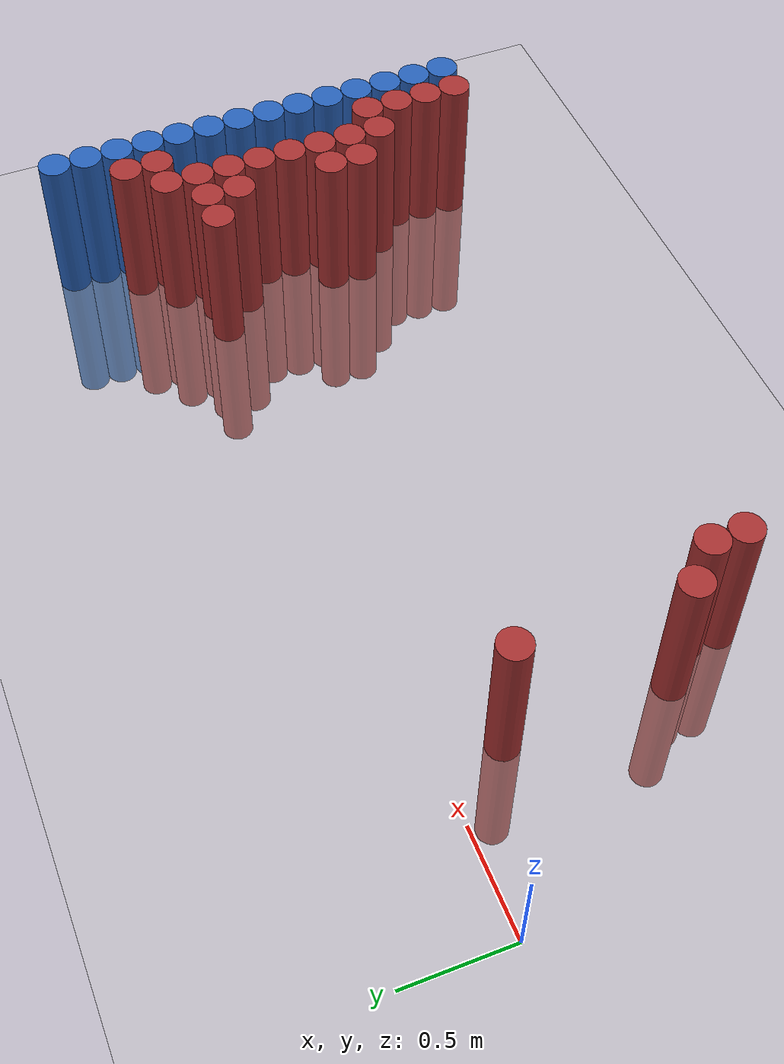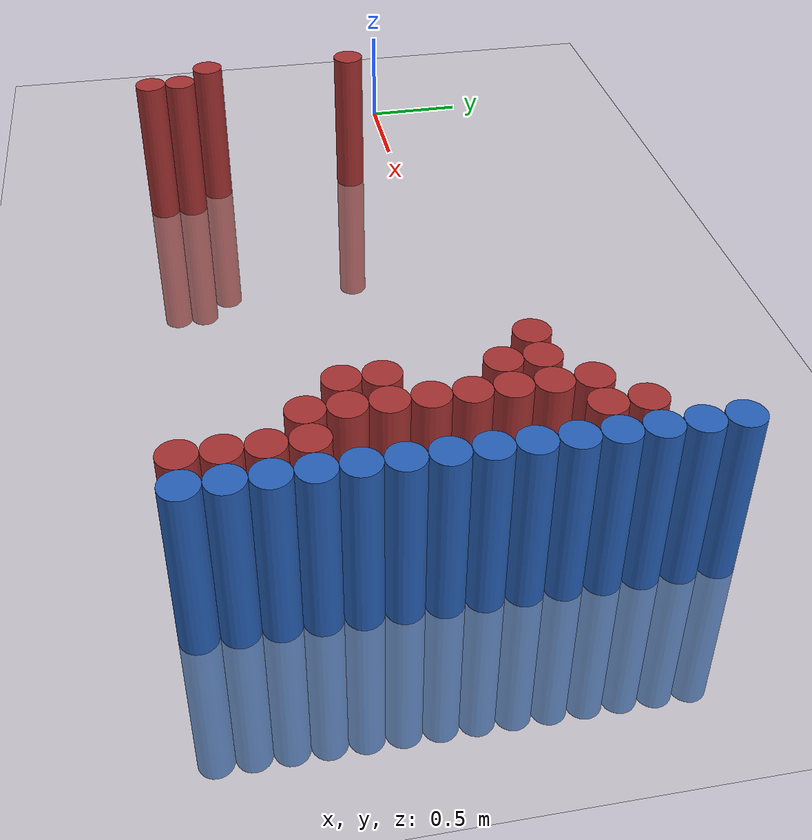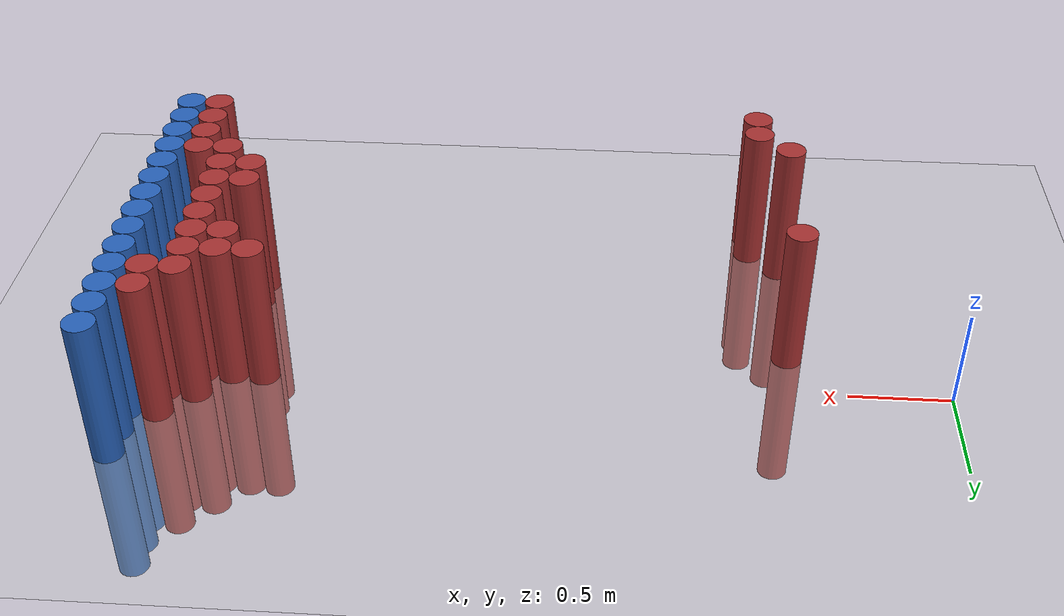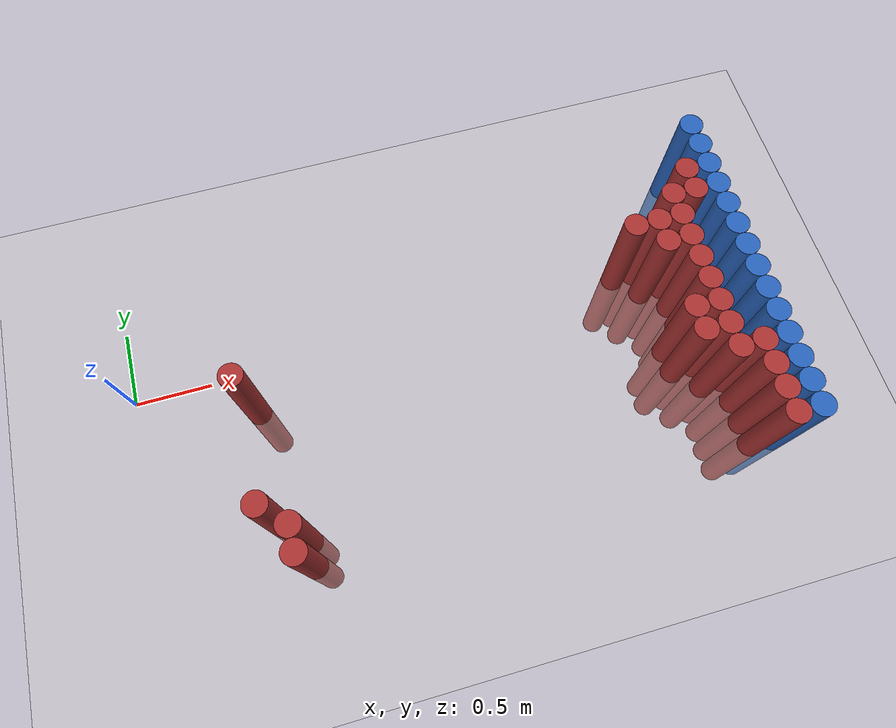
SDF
<sdf version="1.6">
 <world name="default">
  <model name="ground_plane">
   <static>1</static>
   <link name="link">
    <collision name="collision">
     <geometry><plane><normal>0 0 1</normal><size>100 100</size></plane></geometry>
     <surface><friction><ode><mu>100</mu><mu2>50</mu2></ode></friction></surface>
    </collision>
    <visual name="visual">
     <cast_shadows>0</cast_shadows>
     <geometry><plane><normal>0 0 1</normal><size>100 100</size></plane></geometry>
     <material>
      <script><uri>file://media/materials/scripts/gazebo.material</uri><name>Gazebo/Grey</name></script>
     </material>
    </visual>
   </link>
  </model>
  <model name="unit_cylinder_96">
   <static>1</static>
   <pose>3.925000 -1.325000 0.000000 0.000000 0.000000 0.000000</pose>
   <link name="link">
    <inertial>
     <mass>1</mass>
     <inertia><ixx>0.145833</ixx><ixy>0</ixy><ixz>0</ixz><iyy>0.145833</iyy><iyz>0</iyz><izz>0.125</izz></inertia>
    </inertial>
    <collision name="collision">
     <geometry><cylinder><radius>0.075000</radius><length>1.5</length></cylinder></geometry>
    </collision>
    <visual name="visual">
     <geometry><cylinder><radius>0.075000</radius><length>1.5</length></cylinder></geometry>
     <material>
      <ambient>0.152000 0.379000 0.720000 1</ambient>
      <diffuse>0.152000 0.379000 0.720000 1</diffuse>
     </material>
     <material>
      <script><name>Gazebo/Grey</name><uri>file://media/materials/scripts/gazebo.material</uri></script>
     </material>
    </visual>
   </link>
  </model>
  <model name="unit_cylinder_98">
   <static>1</static>
   <pose>3.925000 -1.175000 0.000000 0.000000 0.000000 0.000000</pose>
   <link name="link">
    <inertial>
     <mass>1</mass>
     <inertia><ixx>0.145833</ixx><ixy>0</ixy><ixz>0</ixz><iyy>0.145833</iyy><iyz>0</iyz><izz>0.125</izz></inertia>
    </inertial>
    <collision name="collision">
     <geometry><cylinder><radius>0.075000</radius><length>1.5</length></cylinder></geometry>
    </collision>
    <visual name="visual">
     <geometry><cylinder><radius>0.075000</radius><length>1.5</length></cylinder></geometry>
     <material>
      <ambient>0.152000 0.379000 0.720000 1</ambient>
      <diffuse>0.152000 0.379000 0.720000 1</diffuse>
     </material>
     <material>
      <script><name>Gazebo/Grey</name><uri>file://media/materials/scripts/gazebo.material</uri></script>
     </material>
    </visual>
   </link>
  </model>
  <model name="unit_cylinder_100">
   <static>1</static>
   <pose>3.925000 -1.025000 0.000000 0.000000 0.000000 0.000000</pose>
   <link name="link">
    <inertial>
     <mass>1</mass>
     <inertia><ixx>0.145833</ixx><ixy>0</ixy><ixz>0</ixz><iyy>0.145833</iyy><iyz>0</iyz><izz>0.125</izz></inertia>
    </inertial>
    <collision name="collision">
     <geometry><cylinder><radius>0.075000</radius><length>1.5</length></cylinder></geometry>
    </collision>
    <visual name="visual">
     <geometry><cylinder><radius>0.075000</radius><length>1.5</length></cylinder></geometry>
     <material>
      <ambient>0.152000 0.379000 0.720000 1</ambient>
      <diffuse>0.152000 0.379000 0.720000 1</diffuse>
     </material>
     <material>
      <script><name>Gazebo/Grey</name><uri>file://media/materials/scripts/gazebo.material</uri></script>
     </material>
    </visual>
   </link>
  </model>
  <model name="unit_cylinder_102">
   <static>1</static>
   <pose>3.925000 -0.875000 0.000000 0.000000 0.000000 0.000000</pose>
   <link name="link">
    <inertial>
     <mass>1</mass>
     <inertia><ixx>0.145833</ixx><ixy>0</ixy><ixz>0</ixz><iyy>0.145833</iyy><iyz>0</iyz><izz>0.125</izz></inertia>
    </inertial>
    <collision name="collision">
     <geometry><cylinder><radius>0.075000</radius><length>1.5</length></cylinder></geometry>
    </collision>
    <visual name="visual">
     <geometry><cylinder><radius>0.075000</radius><length>1.5</length></cylinder></geometry>
     <material>
      <ambient>0.152000 0.379000 0.720000 1</ambient>
      <diffuse>0.152000 0.379000 0.720000 1</diffuse>
     </material>
     <material>
      <script><name>Gazebo/Grey</name><uri>file://media/materials/scripts/gazebo.material</uri></script>
     </material>
    </visual>
   </link>
  </model>
  <model name="unit_cylinder_104">
   <static>1</static>
   <pose>3.925000 -0.725000 0.000000 0.000000 0.000000 0.000000</pose>
   <link name="link">
    <inertial>
     <mass>1</mass>
     <inertia><ixx>0.145833</ixx><ixy>0</ixy><ixz>0</ixz><iyy>0.145833</iyy><iyz>0</iyz><izz>0.125</izz></inertia>
    </inertial>
    <collision name="collision">
     <geometry><cylinder><radius>0.075000</radius><length>1.5</length></cylinder></geometry>
    </collision>
    <visual name="visual">
     <geometry><cylinder><radius>0.075000</radius><length>1.5</length></cylinder></geometry>
     <material>
      <ambient>0.152000 0.379000 0.720000 1</ambient>
      <diffuse>0.152000 0.379000 0.720000 1</diffuse>
     </material>
     <material>
      <script><name>Gazebo/Grey</name><uri>file://media/materials/scripts/gazebo.material</uri></script>
     </material>
    </visual>
   </link>
  </model>
  <model name="unit_cylinder_106">
   <static>1</static>
   <pose>3.925000 -0.575000 0.000000 0.000000 0.000000 0.000000</pose>
   <link name="link">
    <inertial>
     <mass>1</mass>
     <inertia><ixx>0.145833</ixx><ixy>0</ixy><ixz>0</ixz><iyy>0.145833</iyy><iyz>0</iyz><izz>0.125</izz></inertia>
    </inertial>
    <collision name="collision">
     <geometry><cylinder><radius>0.075000</radius><length>1.5</length></cylinder></geometry>
    </collision>
    <visual name="visual">
     <geometry><cylinder><radius>0.075000</radius><length>1.5</length></cylinder></geometry>
     <material>
      <ambient>0.152000 0.379000 0.720000 1</ambient>
      <diffuse>0.152000 0.379000 0.720000 1</diffuse>
     </material>
     <material>
      <script><name>Gazebo/Grey</name><uri>file://media/materials/scripts/gazebo.material</uri></script>
     </material>
    </visual>
   </link>
  </model>
  <model name="unit_cylinder_108">
   <static>1</static>
   <pose>3.925000 -0.425000 0.000000 0.000000 0.000000 0.000000</pose>
   <link name="link">
    <inertial>
     <mass>1</mass>
     <inertia><ixx>0.145833</ixx><ixy>0</ixy><ixz>0</ixz><iyy>0.145833</iyy><iyz>0</iyz><izz>0.125</izz></inertia>
    </inertial>
    <collision name="collision">
     <geometry><cylinder><radius>0.075000</radius><length>1.5</length></cylinder></geometry>
    </collision>
    <visual name="visual">
     <geometry><cylinder><radius>0.075000</radius><length>1.5</length></cylinder></geometry>
     <material>
      <ambient>0.152000 0.379000 0.720000 1</ambient>
      <diffuse>0.152000 0.379000 0.720000 1</diffuse>
     </material>
     <material>
      <script><name>Gazebo/Grey</name><uri>file://media/materials/scripts/gazebo.material</uri></script>
     </material>
    </visual>
   </link>
  </model>
  <model name="unit_cylinder_110">
   <static>1</static>
   <pose>3.925000 -0.275000 0.000000 0.000000 0.000000 0.000000</pose>
   <link name="link">
    <inertial>
     <mass>1</mass>
     <inertia><ixx>0.145833</ixx><ixy>0</ixy><ixz>0</ixz><iyy>0.145833</iyy><iyz>0</iyz><izz>0.125</izz></inertia>
    </inertial>
    <collision name="collision">
     <geometry><cylinder><radius>0.075000</radius><length>1.5</length></cylinder></geometry>
    </collision>
    <visual name="visual">
     <geometry><cylinder><radius>0.075000</radius><length>1.5</length></cylinder></geometry>
     <material>
      <ambient>0.152000 0.379000 0.720000 1</ambient>
      <diffuse>0.152000 0.379000 0.720000 1</diffuse>
     </material>
     <material>
      <script><name>Gazebo/Grey</name><uri>file://media/materials/scripts/gazebo.material</uri></script>
     </material>
    </visual>
   </link>
  </model>
  <model name="unit_cylinder_112">
   <static>1</static>
   <pose>3.925000 -0.125000 0.000000 0.000000 0.000000 0.000000</pose>
   <link name="link">
    <inertial>
     <mass>1</mass>
     <inertia><ixx>0.145833</ixx><ixy>0</ixy><ixz>0</ixz><iyy>0.145833</iyy><iyz>0</iyz><izz>0.125</izz></inertia>
    </inertial>
    <collision name="collision">
     <geometry><cylinder><radius>0.075000</radius><length>1.5</length></cylinder></geometry>
    </collision>
    <visual name="visual">
     <geometry><cylinder><radius>0.075000</radius><length>1.5</length></cylinder></geometry>
     <material>
      <ambient>0.152000 0.379000 0.720000 1</ambient>
      <diffuse>0.152000 0.379000 0.720000 1</diffuse>
     </material>
     <material>
      <script><name>Gazebo/Grey</name><uri>file://media/materials/scripts/gazebo.material</uri></script>
     </material>
    </visual>
   </link>
  </model>
  <model name="unit_cylinder_114">
   <static>1</static>
   <pose>3.925000 0.025000 0.000000 0.000000 0.000000 0.000000</pose>
   <link name="link">
    <inertial>
     <mass>1</mass>
     <inertia><ixx>0.145833</ixx><ixy>0</ixy><ixz>0</ixz><iyy>0.145833</iyy><iyz>0</iyz><izz>0.125</izz></inertia>
    </inertial>
    <collision name="collision">
     <geometry><cylinder><radius>0.075000</radius><length>1.5</length></cylinder></geometry>
    </collision>
    <visual name="visual">
     <geometry><cylinder><radius>0.075000</radius><length>1.5</length></cylinder></geometry>
     <material>
      <ambient>0.152000 0.379000 0.720000 1</ambient>
      <diffuse>0.152000 0.379000 0.720000 1</diffuse>
     </material>
     <material>
      <script><name>Gazebo/Grey</name><uri>file://media/materials/scripts/gazebo.material</uri></script>
     </material>
    </visual>
   </link>
  </model>
  <model name="unit_cylinder_116">
   <static>1</static>
   <pose>3.925000 0.175000 0.000000 0.000000 0.000000 0.000000</pose>
   <link name="link">
    <inertial>
     <mass>1</mass>
     <inertia><ixx>0.145833</ixx><ixy>0</ixy><ixz>0</ixz><iyy>0.145833</iyy><iyz>0</iyz><izz>0.125</izz></inertia>
    </inertial>
    <collision name="collision">
     <geometry><cylinder><radius>0.075000</radius><length>1.5</length></cylinder></geometry>
    </collision>
    <visual name="visual">
     <geometry><cylinder><radius>0.075000</radius><length>1.5</length></cylinder></geometry>
     <material>
      <ambient>0.152000 0.379000 0.720000 1</ambient>
      <diffuse>0.152000 0.379000 0.720000 1</diffuse>
     </material>
     <material>
      <script><name>Gazebo/Grey</name><uri>file://media/materials/scripts/gazebo.material</uri></script>
     </material>
    </visual>
   </link>
  </model>
  <model name="unit_cylinder_118">
   <static>1</static>
   <pose>3.925000 0.325000 0.000000 0.000000 0.000000 0.000000</pose>
   <link name="link">
    <inertial>
     <mass>1</mass>
     <inertia><ixx>0.145833</ixx><ixy>0</ixy><ixz>0</ixz><iyy>0.145833</iyy><iyz>0</iyz><izz>0.125</izz></inertia>
    </inertial>
    <collision name="collision">
     <geometry><cylinder><radius>0.075000</radius><length>1.5</length></cylinder></geometry>
    </collision>
    <visual name="visual">
     <geometry><cylinder><radius>0.075000</radius><length>1.5</length></cylinder></geometry>
     <material>
      <ambient>0.152000 0.379000 0.720000 1</ambient>
      <diffuse>0.152000 0.379000 0.720000 1</diffuse>
     </material>
     <material>
      <script><name>Gazebo/Grey</name><uri>file://media/materials/scripts/gazebo.material</uri></script>
     </material>
    </visual>
   </link>
  </model>
  <model name="unit_cylinder_120">
   <static>1</static>
   <pose>3.925000 0.475000 0.000000 0.000000 0.000000 0.000000</pose>
   <link name="link">
    <inertial>
     <mass>1</mass>
     <inertia><ixx>0.145833</ixx><ixy>0</ixy><ixz>0</ixz><iyy>0.145833</iyy><iyz>0</iyz><izz>0.125</izz></inertia>
    </inertial>
    <collision name="collision">
     <geometry><cylinder><radius>0.075000</radius><length>1.5</length></cylinder></geometry>
    </collision>
    <visual name="visual">
     <geometry><cylinder><radius>0.075000</radius><length>1.5</length></cylinder></geometry>
     <material>
      <ambient>0.152000 0.379000 0.720000 1</ambient>
      <diffuse>0.152000 0.379000 0.720000 1</diffuse>
     </material>
     <material>
      <script><name>Gazebo/Grey</name><uri>file://media/materials/scripts/gazebo.material</uri></script>
     </material>
    </visual>
   </link>
  </model>
  <model name="unit_cylinder_122">
   <static>1</static>
   <pose>3.925000 0.625000 0.000000 0.000000 0.000000 0.000000</pose>
   <link name="link">
    <inertial>
     <mass>1</mass>
     <inertia><ixx>0.145833</ixx><ixy>0</ixy><ixz>0</ixz><iyy>0.145833</iyy><iyz>0</iyz><izz>0.125</izz></inertia>
    </inertial>
    <collision name="collision">
     <geometry><cylinder><radius>0.075000</radius><length>1.5</length></cylinder></geometry>
    </collision>
    <visual name="visual">
     <geometry><cylinder><radius>0.075000</radius><length>1.5</length></cylinder></geometry>
     <material>
      <ambient>0.152000 0.379000 0.720000 1</ambient>
      <diffuse>0.152000 0.379000 0.720000 1</diffuse>
     </material>
     <material>
      <script><name>Gazebo/Grey</name><uri>file://media/materials/scripts/gazebo.material</uri></script>
     </material>
    </visual>
   </link>
  </model>
  <model name="unit_cylinder_409">
   <static>1</static>
   <pose>0.775000 -1.025000 0.000000 0.000000 0.000000 0.000000</pose>
   <link name="link">
    <inertial>
     <mass>1</mass>
     <inertia><ixx>0.145833</ixx><ixy>0</ixy><ixz>0</ixz><iyy>0.145833</iyy><iyz>0</iyz><izz>0.125</izz></inertia>
    </inertial>
    <collision name="collision">
     <geometry><cylinder><radius>0.075000</radius><length>1.5</length></cylinder></geometry>
    </collision>
    <visual name="visual">
     <geometry><cylinder><radius>0.075000</radius><length>1.5</length></cylinder></geometry>
     <material>
      <ambient>0.648000 0.192000 0.192000 1</ambient>
      <diffuse>0.648000 0.192000 0.192000 1</diffuse>
     </material>
     <material>
      <script><name>Gazebo/Grey</name><uri>file://media/materials/scripts/gazebo.material</uri></script>
     </material>
    </visual>
   </link>
  </model>
  <model name="unit_cylinder_410">
   <static>1</static>
   <pose>0.775000 -0.275000 0.000000 0.000000 0.000000 0.000000</pose>
   <link name="link">
    <inertial>
     <mass>1</mass>
     <inertia><ixx>0.145833</ixx><ixy>0</ixy><ixz>0</ixz><iyy>0.145833</iyy><iyz>0</iyz><izz>0.125</izz></inertia>
    </inertial>
    <collision name="collision">
     <geometry><cylinder><radius>0.075000</radius><length>1.5</length></cylinder></geometry>
    </collision>
    <visual name="visual">
     <geometry><cylinder><radius>0.075000</radius><length>1.5</length></cylinder></geometry>
     <material>
      <ambient>0.648000 0.192000 0.192000 1</ambient>
      <diffuse>0.648000 0.192000 0.192000 1</diffuse>
     </material>
     <material>
      <script><name>Gazebo/Grey</name><uri>file://media/materials/scripts/gazebo.material</uri></script>
     </material>
    </visual>
   </link>
  </model>
  <model name="unit_cylinder_413">
   <static>1</static>
   <pose>0.925000 -1.325000 0.000000 0.000000 0.000000 0.000000</pose>
   <link name="link">
    <inertial>
     <mass>1</mass>
     <inertia><ixx>0.145833</ixx><ixy>0</ixy><ixz>0</ixz><iyy>0.145833</iyy><iyz>0</iyz><izz>0.125</izz></inertia>
    </inertial>
    <collision name="collision">
     <geometry><cylinder><radius>0.075000</radius><length>1.5</length></cylinder></geometry>
    </collision>
    <visual name="visual">
     <geometry><cylinder><radius>0.075000</radius><length>1.5</length></cylinder></geometry>
     <material>
      <ambient>0.648000 0.192000 0.192000 1</ambient>
      <diffuse>0.648000 0.192000 0.192000 1</diffuse>
     </material>
     <material>
      <script><name>Gazebo/Grey</name><uri>file://media/materials/scripts/gazebo.material</uri></script>
     </material>
    </visual>
   </link>
  </model>
  <model name="unit_cylinder_414">
   <static>1</static>
   <pose>0.925000 -1.175000 0.000000 0.000000 0.000000 0.000000</pose>
   <link name="link">
    <inertial>
     <mass>1</mass>
     <inertia><ixx>0.145833</ixx><ixy>0</ixy><ixz>0</ixz><iyy>0.145833</iyy><iyz>0</iyz><izz>0.125</izz></inertia>
    </inertial>
    <collision name="collision">
     <geometry><cylinder><radius>0.075000</radius><length>1.5</length></cylinder></geometry>
    </collision>
    <visual name="visual">
     <geometry><cylinder><radius>0.075000</radius><length>1.5</length></cylinder></geometry>
     <material>
      <ambient>0.648000 0.192000 0.192000 1</ambient>
      <diffuse>0.648000 0.192000 0.192000 1</diffuse>
     </material>
     <material>
      <script><name>Gazebo/Grey</name><uri>file://media/materials/scripts/gazebo.material</uri></script>
     </material>
    </visual>
   </link>
  </model>
  <model name="unit_cylinder_460">
   <static>1</static>
   <pose>3.325000 0.025000 0.000000 0.000000 0.000000 0.000000</pose>
   <link name="link">
    <inertial>
     <mass>1</mass>
     <inertia><ixx>0.145833</ixx><ixy>0</ixy><ixz>0</ixz><iyy>0.145833</iyy><iyz>0</iyz><izz>0.125</izz></inertia>
    </inertial>
    <collision name="collision">
     <geometry><cylinder><radius>0.075000</radius><length>1.5</length></cylinder></geometry>
    </collision>
    <visual name="visual">
     <geometry><cylinder><radius>0.075000</radius><length>1.5</length></cylinder></geometry>
     <material>
      <ambient>0.648000 0.192000 0.192000 1</ambient>
      <diffuse>0.648000 0.192000 0.192000 1</diffuse>
     </material>
     <material>
      <script><name>Gazebo/Grey</name><uri>file://media/materials/scripts/gazebo.material</uri></script>
     </material>
    </visual>
   </link>
  </model>
  <model name="unit_cylinder_462">
   <static>1</static>
   <pose>3.475000 -0.725000 0.000000 0.000000 0.000000 0.000000</pose>
   <link name="link">
    <inertial>
     <mass>1</mass>
     <inertia><ixx>0.145833</ixx><ixy>0</ixy><ixz>0</ixz><iyy>0.145833</iyy><iyz>0</iyz><izz>0.125</izz></inertia>
    </inertial>
    <collision name="collision">
     <geometry><cylinder><radius>0.075000</radius><length>1.5</length></cylinder></geometry>
    </collision>
    <visual name="visual">
     <geometry><cylinder><radius>0.075000</radius><length>1.5</length></cylinder></geometry>
     <material>
      <ambient>0.648000 0.192000 0.192000 1</ambient>
      <diffuse>0.648000 0.192000 0.192000 1</diffuse>
     </material>
     <material>
      <script><name>Gazebo/Grey</name><uri>file://media/materials/scripts/gazebo.material</uri></script>
     </material>
    </visual>
   </link>
  </model>
  <model name="unit_cylinder_463">
   <static>1</static>
   <pose>3.475000 -0.575000 0.000000 0.000000 0.000000 0.000000</pose>
   <link name="link">
    <inertial>
     <mass>1</mass>
     <inertia><ixx>0.145833</ixx><ixy>0</ixy><ixz>0</ixz><iyy>0.145833</iyy><iyz>0</iyz><izz>0.125</izz></inertia>
    </inertial>
    <collision name="collision">
     <geometry><cylinder><radius>0.075000</radius><length>1.5</length></cylinder></geometry>
    </collision>
    <visual name="visual">
     <geometry><cylinder><radius>0.075000</radius><length>1.5</length></cylinder></geometry>
     <material>
      <ambient>0.648000 0.192000 0.192000 1</ambient>
      <diffuse>0.648000 0.192000 0.192000 1</diffuse>
     </material>
     <material>
      <script><name>Gazebo/Grey</name><uri>file://media/materials/scripts/gazebo.material</uri></script>
     </material>
    </visual>
   </link>
  </model>
  <model name="unit_cylinder_464">
   <static>1</static>
   <pose>3.475000 -0.125000 0.000000 0.000000 0.000000 0.000000</pose>
   <link name="link">
    <inertial>
     <mass>1</mass>
     <inertia><ixx>0.145833</ixx><ixy>0</ixy><ixz>0</ixz><iyy>0.145833</iyy><iyz>0</iyz><izz>0.125</izz></inertia>
    </inertial>
    <collision name="collision">
     <geometry><cylinder><radius>0.075000</radius><length>1.5</length></cylinder></geometry>
    </collision>
    <visual name="visual">
     <geometry><cylinder><radius>0.075000</radius><length>1.5</length></cylinder></geometry>
     <material>
      <ambient>0.648000 0.192000 0.192000 1</ambient>
      <diffuse>0.648000 0.192000 0.192000 1</diffuse>
     </material>
     <material>
      <script><name>Gazebo/Grey</name><uri>file://media/materials/scripts/gazebo.material</uri></script>
     </material>
    </visual>
   </link>
  </model>
  <model name="unit_cylinder_465">
   <static>1</static>
   <pose>3.475000 0.025000 0.000000 0.000000 0.000000 0.000000</pose>
   <link name="link">
    <inertial>
     <mass>1</mass>
     <inertia><ixx>0.145833</ixx><ixy>0</ixy><ixz>0</ixz><iyy>0.145833</iyy><iyz>0</iyz><izz>0.125</izz></inertia>
    </inertial>
    <collision name="collision">
     <geometry><cylinder><radius>0.075000</radius><length>1.5</length></cylinder></geometry>
    </collision>
    <visual name="visual">
     <geometry><cylinder><radius>0.075000</radius><length>1.5</length></cylinder></geometry>
     <material>
      <ambient>0.648000 0.192000 0.192000 1</ambient>
      <diffuse>0.648000 0.192000 0.192000 1</diffuse>
     </material>
     <material>
      <script><name>Gazebo/Grey</name><uri>file://media/materials/scripts/gazebo.material</uri></script>
     </material>
    </visual>
   </link>
  </model>
  <model name="unit_cylinder_468">
   <static>1</static>
   <pose>3.625000 -0.875000 0.000000 0.000000 0.000000 0.000000</pose>
   <link name="link">
    <inertial>
     <mass>1</mass>
     <inertia><ixx>0.145833</ixx><ixy>0</ixy><ixz>0</ixz><iyy>0.145833</iyy><iyz>0</iyz><izz>0.125</izz></inertia>
    </inertial>
    <collision name="collision">
     <geometry><cylinder><radius>0.075000</radius><length>1.5</length></cylinder></geometry>
    </collision>
    <visual name="visual">
     <geometry><cylinder><radius>0.075000</radius><length>1.5</length></cylinder></geometry>
     <material>
      <ambient>0.648000 0.192000 0.192000 1</ambient>
      <diffuse>0.648000 0.192000 0.192000 1</diffuse>
     </material>
     <material>
      <script><name>Gazebo/Grey</name><uri>file://media/materials/scripts/gazebo.material</uri></script>
     </material>
    </visual>
   </link>
  </model>
  <model name="unit_cylinder_469">
   <static>1</static>
   <pose>3.625000 -0.725000 0.000000 0.000000 0.000000 0.000000</pose>
   <link name="link">
    <inertial>
     <mass>1</mass>
     <inertia><ixx>0.145833</ixx><ixy>0</ixy><ixz>0</ixz><iyy>0.145833</iyy><iyz>0</iyz><izz>0.125</izz></inertia>
    </inertial>
    <collision name="collision">
     <geometry><cylinder><radius>0.075000</radius><length>1.5</length></cylinder></geometry>
    </collision>
    <visual name="visual">
     <geometry><cylinder><radius>0.075000</radius><length>1.5</length></cylinder></geometry>
     <material>
      <ambient>0.648000 0.192000 0.192000 1</ambient>
      <diffuse>0.648000 0.192000 0.192000 1</diffuse>
     </material>
     <material>
      <script><name>Gazebo/Grey</name><uri>file://media/materials/scripts/gazebo.material</uri></script>
     </material>
    </visual>
   </link>
  </model>
  <model name="unit_cylinder_470">
   <static>1</static>
   <pose>3.625000 -0.575000 0.000000 0.000000 0.000000 0.000000</pose>
   <link name="link">
    <inertial>
     <mass>1</mass>
     <inertia><ixx>0.145833</ixx><ixy>0</ixy><ixz>0</ixz><iyy>0.145833</iyy><iyz>0</iyz><izz>0.125</izz></inertia>
    </inertial>
    <collision name="collision">
     <geometry><cylinder><radius>0.075000</radius><length>1.5</length></cylinder></geometry>
    </collision>
    <visual name="visual">
     <geometry><cylinder><radius>0.075000</radius><length>1.5</length></cylinder></geometry>
     <material>
      <ambient>0.648000 0.192000 0.192000 1</ambient>
      <diffuse>0.648000 0.192000 0.192000 1</diffuse>
     </material>
     <material>
      <script><name>Gazebo/Grey</name><uri>file://media/materials/scripts/gazebo.material</uri></script>
     </material>
    </visual>
   </link>
  </model>
  <model name="unit_cylinder_471">
   <static>1</static>
   <pose>3.625000 -0.425000 0.000000 0.000000 0.000000 0.000000</pose>
   <link name="link">
    <inertial>
     <mass>1</mass>
     <inertia><ixx>0.145833</ixx><ixy>0</ixy><ixz>0</ixz><iyy>0.145833</iyy><iyz>0</iyz><izz>0.125</izz></inertia>
    </inertial>
    <collision name="collision">
     <geometry><cylinder><radius>0.075000</radius><length>1.5</length></cylinder></geometry>
    </collision>
    <visual name="visual">
     <geometry><cylinder><radius>0.075000</radius><length>1.5</length></cylinder></geometry>
     <material>
      <ambient>0.648000 0.192000 0.192000 1</ambient>
      <diffuse>0.648000 0.192000 0.192000 1</diffuse>
     </material>
     <material>
      <script><name>Gazebo/Grey</name><uri>file://media/materials/scripts/gazebo.material</uri></script>
     </material>
    </visual>
   </link>
  </model>
  <model name="unit_cylinder_472">
   <static>1</static>
   <pose>3.625000 -0.275000 0.000000 0.000000 0.000000 0.000000</pose>
   <link name="link">
    <inertial>
     <mass>1</mass>
     <inertia><ixx>0.145833</ixx><ixy>0</ixy><ixz>0</ixz><iyy>0.145833</iyy><iyz>0</iyz><izz>0.125</izz></inertia>
    </inertial>
    <collision name="collision">
     <geometry><cylinder><radius>0.075000</radius><length>1.5</length></cylinder></geometry>
    </collision>
    <visual name="visual">
     <geometry><cylinder><radius>0.075000</radius><length>1.5</length></cylinder></geometry>
     <material>
      <ambient>0.648000 0.192000 0.192000 1</ambient>
      <diffuse>0.648000 0.192000 0.192000 1</diffuse>
     </material>
     <material>
      <script><name>Gazebo/Grey</name><uri>file://media/materials/scripts/gazebo.material</uri></script>
     </material>
    </visual>
   </link>
  </model>
  <model name="unit_cylinder_473">
   <static>1</static>
   <pose>3.625000 -0.125000 0.000000 0.000000 0.000000 0.000000</pose>
   <link name="link">
    <inertial>
     <mass>1</mass>
     <inertia><ixx>0.145833</ixx><ixy>0</ixy><ixz>0</ixz><iyy>0.145833</iyy><iyz>0</iyz><izz>0.125</izz></inertia>
    </inertial>
    <collision name="collision">
     <geometry><cylinder><radius>0.075000</radius><length>1.5</length></cylinder></geometry>
    </collision>
    <visual name="visual">
     <geometry><cylinder><radius>0.075000</radius><length>1.5</length></cylinder></geometry>
     <material>
      <ambient>0.648000 0.192000 0.192000 1</ambient>
      <diffuse>0.648000 0.192000 0.192000 1</diffuse>
     </material>
     <material>
      <script><name>Gazebo/Grey</name><uri>file://media/materials/scripts/gazebo.material</uri></script>
     </material>
    </visual>
   </link>
  </model>
  <model name="unit_cylinder_474">
   <static>1</static>
   <pose>3.625000 0.025000 0.000000 0.000000 0.000000 0.000000</pose>
   <link name="link">
    <inertial>
     <mass>1</mass>
     <inertia><ixx>0.145833</ixx><ixy>0</ixy><ixz>0</ixz><iyy>0.145833</iyy><iyz>0</iyz><izz>0.125</izz></inertia>
    </inertial>
    <collision name="collision">
     <geometry><cylinder><radius>0.075000</radius><length>1.5</length></cylinder></geometry>
    </collision>
    <visual name="visual">
     <geometry><cylinder><radius>0.075000</radius><length>1.5</length></cylinder></geometry>
     <material>
      <ambient>0.648000 0.192000 0.192000 1</ambient>
      <diffuse>0.648000 0.192000 0.192000 1</diffuse>
     </material>
     <material>
      <script><name>Gazebo/Grey</name><uri>file://media/materials/scripts/gazebo.material</uri></script>
     </material>
    </visual>
   </link>
  </model>
  <model name="unit_cylinder_475">
   <static>1</static>
   <pose>3.625000 0.175000 0.000000 0.000000 0.000000 0.000000</pose>
   <link name="link">
    <inertial>
     <mass>1</mass>
     <inertia><ixx>0.145833</ixx><ixy>0</ixy><ixz>0</ixz><iyy>0.145833</iyy><iyz>0</iyz><izz>0.125</izz></inertia>
    </inertial>
    <collision name="collision">
     <geometry><cylinder><radius>0.075000</radius><length>1.5</length></cylinder></geometry>
    </collision>
    <visual name="visual">
     <geometry><cylinder><radius>0.075000</radius><length>1.5</length></cylinder></geometry>
     <material>
      <ambient>0.648000 0.192000 0.192000 1</ambient>
      <diffuse>0.648000 0.192000 0.192000 1</diffuse>
     </material>
     <material>
      <script><name>Gazebo/Grey</name><uri>file://media/materials/scripts/gazebo.material</uri></script>
     </material>
    </visual>
   </link>
  </model>
  <model name="unit_cylinder_481">
   <static>1</static>
   <pose>3.775000 -1.325000 0.000000 0.000000 0.000000 0.000000</pose>
   <link name="link">
    <inertial>
     <mass>1</mass>
     <inertia><ixx>0.145833</ixx><ixy>0</ixy><ixz>0</ixz><iyy>0.145833</iyy><iyz>0</iyz><izz>0.125</izz></inertia>
    </inertial>
    <collision name="collision">
     <geometry><cylinder><radius>0.075000</radius><length>1.5</length></cylinder></geometry>
    </collision>
    <visual name="visual">
     <geometry><cylinder><radius>0.075000</radius><length>1.5</length></cylinder></geometry>
     <material>
      <ambient>0.648000 0.192000 0.192000 1</ambient>
      <diffuse>0.648000 0.192000 0.192000 1</diffuse>
     </material>
     <material>
      <script><name>Gazebo/Grey</name><uri>file://media/materials/scripts/gazebo.material</uri></script>
     </material>
    </visual>
   </link>
  </model>
  <model name="unit_cylinder_482">
   <static>1</static>
   <pose>3.775000 -1.175000 0.000000 0.000000 0.000000 0.000000</pose>
   <link name="link">
    <inertial>
     <mass>1</mass>
     <inertia><ixx>0.145833</ixx><ixy>0</ixy><ixz>0</ixz><iyy>0.145833</iyy><iyz>0</iyz><izz>0.125</izz></inertia>
    </inertial>
    <collision name="collision">
     <geometry><cylinder><radius>0.075000</radius><length>1.5</length></cylinder></geometry>
    </collision>
    <visual name="visual">
     <geometry><cylinder><radius>0.075000</radius><length>1.5</length></cylinder></geometry>
     <material>
      <ambient>0.648000 0.192000 0.192000 1</ambient>
      <diffuse>0.648000 0.192000 0.192000 1</diffuse>
     </material>
     <material>
      <script><name>Gazebo/Grey</name><uri>file://media/materials/scripts/gazebo.material</uri></script>
     </material>
    </visual>
   </link>
  </model>
  <model name="unit_cylinder_483">
   <static>1</static>
   <pose>3.775000 -1.025000 0.000000 0.000000 0.000000 0.000000</pose>
   <link name="link">
    <inertial>
     <mass>1</mass>
     <inertia><ixx>0.145833</ixx><ixy>0</ixy><ixz>0</ixz><iyy>0.145833</iyy><iyz>0</iyz><izz>0.125</izz></inertia>
    </inertial>
    <collision name="collision">
     <geometry><cylinder><radius>0.075000</radius><length>1.5</length></cylinder></geometry>
    </collision>
    <visual name="visual">
     <geometry><cylinder><radius>0.075000</radius><length>1.5</length></cylinder></geometry>
     <material>
      <ambient>0.648000 0.192000 0.192000 1</ambient>
      <diffuse>0.648000 0.192000 0.192000 1</diffuse>
     </material>
     <material>
      <script><name>Gazebo/Grey</name><uri>file://media/materials/scripts/gazebo.material</uri></script>
     </material>
    </visual>
   </link>
  </model>
  <model name="unit_cylinder_484">
   <static>1</static>
   <pose>3.775000 -0.875000 0.000000 0.000000 0.000000 0.000000</pose>
   <link name="link">
    <inertial>
     <mass>1</mass>
     <inertia><ixx>0.145833</ixx><ixy>0</ixy><ixz>0</ixz><iyy>0.145833</iyy><iyz>0</iyz><izz>0.125</izz></inertia>
    </inertial>
    <collision name="collision">
     <geometry><cylinder><radius>0.075000</radius><length>1.5</length></cylinder></geometry>
    </collision>
    <visual name="visual">
     <geometry><cylinder><radius>0.075000</radius><length>1.5</length></cylinder></geometry>
     <material>
      <ambient>0.648000 0.192000 0.192000 1</ambient>
      <diffuse>0.648000 0.192000 0.192000 1</diffuse>
     </material>
     <material>
      <script><name>Gazebo/Grey</name><uri>file://media/materials/scripts/gazebo.material</uri></script>
     </material>
    </visual>
   </link>
  </model>
  <model name="unit_cylinder_485">
   <static>1</static>
   <pose>3.775000 0.175000 0.000000 0.000000 0.000000 0.000000</pose>
   <link name="link">
    <inertial>
     <mass>1</mass>
     <inertia><ixx>0.145833</ixx><ixy>0</ixy><ixz>0</ixz><iyy>0.145833</iyy><iyz>0</iyz><izz>0.125</izz></inertia>
    </inertial>
    <collision name="collision">
     <geometry><cylinder><radius>0.075000</radius><length>1.5</length></cylinder></geometry>
    </collision>
    <visual name="visual">
     <geometry><cylinder><radius>0.075000</radius><length>1.5</length></cylinder></geometry>
     <material>
      <ambient>0.648000 0.192000 0.192000 1</ambient>
      <diffuse>0.648000 0.192000 0.192000 1</diffuse>
     </material>
     <material>
      <script><name>Gazebo/Grey</name><uri>file://media/materials/scripts/gazebo.material</uri></script>
     </material>
    </visual>
   </link>
  </model>
  <model name="unit_cylinder_486">
   <static>1</static>
   <pose>3.775000 0.325000 0.000000 0.000000 0.000000 0.000000</pose>
   <link name="link">
    <inertial>
     <mass>1</mass>
     <inertia><ixx>0.145833</ixx><ixy>0</ixy><ixz>0</ixz><iyy>0.145833</iyy><iyz>0</iyz><izz>0.125</izz></inertia>
    </inertial>
    <collision name="collision">
     <geometry><cylinder><radius>0.075000</radius><length>1.5</length></cylinder></geometry>
    </collision>
    <visual name="visual">
     <geometry><cylinder><radius>0.075000</radius><length>1.5</length></cylinder></geometry>
     <material>
      <ambient>0.648000 0.192000 0.192000 1</ambient>
      <diffuse>0.648000 0.192000 0.192000 1</diffuse>
     </material>
     <material>
      <script><name>Gazebo/Grey</name><uri>file://media/materials/scripts/gazebo.material</uri></script>
     </material>
    </visual>
   </link>
  </model>
  <model name="unit_cylinder_509">
   <static>1</static>
   <pose>3.925000 -1.325000 0.000000 0.000000 0.000000 0.000000</pose>
   <link name="link">
    <inertial>
     <mass>1</mass>
     <inertia><ixx>0.145833</ixx><ixy>0</ixy><ixz>0</ixz><iyy>0.145833</iyy><iyz>0</iyz><izz>0.125</izz></inertia>
    </inertial>
    <collision name="collision">
     <geometry><cylinder><radius>0.075000</radius><length>1.5</length></cylinder></geometry>
    </collision>
    <visual name="visual">
     <geometry><cylinder><radius>0.075000</radius><length>1.5</length></cylinder></geometry>
     <material>
      <ambient>0.152000 0.379000 0.720000 1</ambient>
      <diffuse>0.152000 0.379000 0.720000 1</diffuse>
     </material>
     <material>
      <script><name>Gazebo/Grey</name><uri>file://media/materials/scripts/gazebo.material</uri></script>
     </material>
    </visual>
   </link>
  </model>
  <model name="unit_cylinder_510">
   <static>1</static>
   <pose>3.925000 -1.175000 0.000000 0.000000 0.000000 0.000000</pose>
   <link name="link">
    <inertial>
     <mass>1</mass>
     <inertia><ixx>0.145833</ixx><ixy>0</ixy><ixz>0</ixz><iyy>0.145833</iyy><iyz>0</iyz><izz>0.125</izz></inertia>
    </inertial>
    <collision name="collision">
     <geometry><cylinder><radius>0.075000</radius><length>1.5</length></cylinder></geometry>
    </collision>
    <visual name="visual">
     <geometry><cylinder><radius>0.075000</radius><length>1.5</length></cylinder></geometry>
     <material>
      <ambient>0.152000 0.379000 0.720000 1</ambient>
      <diffuse>0.152000 0.379000 0.720000 1</diffuse>
     </material>
     <material>
      <script><name>Gazebo/Grey</name><uri>file://media/materials/scripts/gazebo.material</uri></script>
     </material>
    </visual>
   </link>
  </model>
  <model name="unit_cylinder_511">
   <static>1</static>
   <pose>3.925000 -1.025000 0.000000 0.000000 0.000000 0.000000</pose>
   <link name="link">
    <inertial>
     <mass>1</mass>
     <inertia><ixx>0.145833</ixx><ixy>0</ixy><ixz>0</ixz><iyy>0.145833</iyy><iyz>0</iyz><izz>0.125</izz></inertia>
    </inertial>
    <collision name="collision">
     <geometry><cylinder><radius>0.075000</radius><length>1.5</length></cylinder></geometry>
    </collision>
    <visual name="visual">
     <geometry><cylinder><radius>0.075000</radius><length>1.5</length></cylinder></geometry>
     <material>
      <ambient>0.152000 0.379000 0.720000 1</ambient>
      <diffuse>0.152000 0.379000 0.720000 1</diffuse>
     </material>
     <material>
      <script><name>Gazebo/Grey</name><uri>file://media/materials/scripts/gazebo.material</uri></script>
     </material>
    </visual>
   </link>
  </model>
  <model name="unit_cylinder_512">
   <static>1</static>
   <pose>3.925000 -0.875000 0.000000 0.000000 0.000000 0.000000</pose>
   <link name="link">
    <inertial>
     <mass>1</mass>
     <inertia><ixx>0.145833</ixx><ixy>0</ixy><ixz>0</ixz><iyy>0.145833</iyy><iyz>0</iyz><izz>0.125</izz></inertia>
    </inertial>
    <collision name="collision">
     <geometry><cylinder><radius>0.075000</radius><length>1.5</length></cylinder></geometry>
    </collision>
    <visual name="visual">
     <geometry><cylinder><radius>0.075000</radius><length>1.5</length></cylinder></geometry>
     <material>
      <ambient>0.152000 0.379000 0.720000 1</ambient>
      <diffuse>0.152000 0.379000 0.720000 1</diffuse>
     </material>
     <material>
      <script><name>Gazebo/Grey</name><uri>file://media/materials/scripts/gazebo.material</uri></script>
     </material>
    </visual>
   </link>
  </model>
  <model name="unit_cylinder_513">
   <static>1</static>
   <pose>3.925000 -0.725000 0.000000 0.000000 0.000000 0.000000</pose>
   <link name="link">
    <inertial>
     <mass>1</mass>
     <inertia><ixx>0.145833</ixx><ixy>0</ixy><ixz>0</ixz><iyy>0.145833</iyy><iyz>0</iyz><izz>0.125</izz></inertia>
    </inertial>
    <collision name="collision">
     <geometry><cylinder><radius>0.075000</radius><length>1.5</length></cylinder></geometry>
    </collision>
    <visual name="visual">
     <geometry><cylinder><radius>0.075000</radius><length>1.5</length></cylinder></geometry>
     <material>
      <ambient>0.152000 0.379000 0.720000 1</ambient>
      <diffuse>0.152000 0.379000 0.720000 1</diffuse>
     </material>
     <material>
      <script><name>Gazebo/Grey</name><uri>file://media/materials/scripts/gazebo.material</uri></script>
     </material>
    </visual>
   </link>
  </model>
  <model name="unit_cylinder_514">
   <static>1</static>
   <pose>3.925000 -0.575000 0.000000 0.000000 0.000000 0.000000</pose>
   <link name="link">
    <inertial>
     <mass>1</mass>
     <inertia><ixx>0.145833</ixx><ixy>0</ixy><ixz>0</ixz><iyy>0.145833</iyy><iyz>0</iyz><izz>0.125</izz></inertia>
    </inertial>
    <collision name="collision">
     <geometry><cylinder><radius>0.075000</radius><length>1.5</length></cylinder></geometry>
    </collision>
    <visual name="visual">
     <geometry><cylinder><radius>0.075000</radius><length>1.5</length></cylinder></geometry>
     <material>
      <ambient>0.152000 0.379000 0.720000 1</ambient>
      <diffuse>0.152000 0.379000 0.720000 1</diffuse>
     </material>
     <material>
      <script><name>Gazebo/Grey</name><uri>file://media/materials/scripts/gazebo.material</uri></script>
     </material>
    </visual>
   </link>
  </model>
  <model name="unit_cylinder_515">
   <static>1</static>
   <pose>3.925000 -0.425000 0.000000 0.000000 0.000000 0.000000</pose>
   <link name="link">
    <inertial>
     <mass>1</mass>
     <inertia><ixx>0.145833</ixx><ixy>0</ixy><ixz>0</ixz><iyy>0.145833</iyy><iyz>0</iyz><izz>0.125</izz></inertia>
    </inertial>
    <collision name="collision">
     <geometry><cylinder><radius>0.075000</radius><length>1.5</length></cylinder></geometry>
    </collision>
    <visual name="visual">
     <geometry><cylinder><radius>0.075000</radius><length>1.5</length></cylinder></geometry>
     <material>
      <ambient>0.152000 0.379000 0.720000 1</ambient>
      <diffuse>0.152000 0.379000 0.720000 1</diffuse>
     </material>
     <material>
      <script><name>Gazebo/Grey</name><uri>file://media/materials/scripts/gazebo.material</uri></script>
     </material>
    </visual>
   </link>
  </model>
  <model name="unit_cylinder_516">
   <static>1</static>
   <pose>3.925000 -0.275000 0.000000 0.000000 0.000000 0.000000</pose>
   <link name="link">
    <inertial>
     <mass>1</mass>
     <inertia><ixx>0.145833</ixx><ixy>0</ixy><ixz>0</ixz><iyy>0.145833</iyy><iyz>0</iyz><izz>0.125</izz></inertia>
    </inertial>
    <collision name="collision">
     <geometry><cylinder><radius>0.075000</radius><length>1.5</length></cylinder></geometry>
    </collision>
    <visual name="visual">
     <geometry><cylinder><radius>0.075000</radius><length>1.5</length></cylinder></geometry>
     <material>
      <ambient>0.152000 0.379000 0.720000 1</ambient>
      <diffuse>0.152000 0.379000 0.720000 1</diffuse>
     </material>
     <material>
      <script><name>Gazebo/Grey</name><uri>file://media/materials/scripts/gazebo.material</uri></script>
     </material>
    </visual>
   </link>
  </model>
  <model name="unit_cylinder_517">
   <static>1</static>
   <pose>3.925000 -0.125000 0.000000 0.000000 0.000000 0.000000</pose>
   <link name="link">
    <inertial>
     <mass>1</mass>
     <inertia><ixx>0.145833</ixx><ixy>0</ixy><ixz>0</ixz><iyy>0.145833</iyy><iyz>0</iyz><izz>0.125</izz></inertia>
    </inertial>
    <collision name="collision">
     <geometry><cylinder><radius>0.075000</radius><length>1.5</length></cylinder></geometry>
    </collision>
    <visual name="visual">
     <geometry><cylinder><radius>0.075000</radius><length>1.5</length></cylinder></geometry>
     <material>
      <ambient>0.152000 0.379000 0.720000 1</ambient>
      <diffuse>0.152000 0.379000 0.720000 1</diffuse>
     </material>
     <material>
      <script><name>Gazebo/Grey</name><uri>file://media/materials/scripts/gazebo.material</uri></script>
     </material>
    </visual>
   </link>
  </model>
  <model name="unit_cylinder_518">
   <static>1</static>
   <pose>3.925000 0.025000 0.000000 0.000000 0.000000 0.000000</pose>
   <link name="link">
    <inertial>
     <mass>1</mass>
     <inertia><ixx>0.145833</ixx><ixy>0</ixy><ixz>0</ixz><iyy>0.145833</iyy><iyz>0</iyz><izz>0.125</izz></inertia>
    </inertial>
    <collision name="collision">
     <geometry><cylinder><radius>0.075000</radius><length>1.5</length></cylinder></geometry>
    </collision>
    <visual name="visual">
     <geometry><cylinder><radius>0.075000</radius><length>1.5</length></cylinder></geometry>
     <material>
      <ambient>0.152000 0.379000 0.720000 1</ambient>
      <diffuse>0.152000 0.379000 0.720000 1</diffuse>
     </material>
     <material>
      <script><name>Gazebo/Grey</name><uri>file://media/materials/scripts/gazebo.material</uri></script>
     </material>
    </visual>
   </link>
  </model>
  <model name="unit_cylinder_519">
   <static>1</static>
   <pose>3.925000 0.175000 0.000000 0.000000 0.000000 0.000000</pose>
   <link name="link">
    <inertial>
     <mass>1</mass>
     <inertia><ixx>0.145833</ixx><ixy>0</ixy><ixz>0</ixz><iyy>0.145833</iyy><iyz>0</iyz><izz>0.125</izz></inertia>
    </inertial>
    <collision name="collision">
     <geometry><cylinder><radius>0.075000</radius><length>1.5</length></cylinder></geometry>
    </collision>
    <visual name="visual">
     <geometry><cylinder><radius>0.075000</radius><length>1.5</length></cylinder></geometry>
     <material>
      <ambient>0.152000 0.379000 0.720000 1</ambient>
      <diffuse>0.152000 0.379000 0.720000 1</diffuse>
     </material>
     <material>
      <script><name>Gazebo/Grey</name><uri>file://media/materials/scripts/gazebo.material</uri></script>
     </material>
    </visual>
   </link>
  </model>
  <model name="unit_cylinder_520">
   <static>1</static>
   <pose>3.925000 0.325000 0.000000 0.000000 0.000000 0.000000</pose>
   <link name="link">
    <inertial>
     <mass>1</mass>
     <inertia><ixx>0.145833</ixx><ixy>0</ixy><ixz>0</ixz><iyy>0.145833</iyy><iyz>0</iyz><izz>0.125</izz></inertia>
    </inertial>
    <collision name="collision">
     <geometry><cylinder><radius>0.075000</radius><length>1.5</length></cylinder></geometry>
    </collision>
    <visual name="visual">
     <geometry><cylinder><radius>0.075000</radius><length>1.5</length></cylinder></geometry>
     <material>
      <ambient>0.152000 0.379000 0.720000 1</ambient>
      <diffuse>0.152000 0.379000 0.720000 1</diffuse>
     </material>
     <material>
      <script><name>Gazebo/Grey</name><uri>file://media/materials/scripts/gazebo.material</uri></script>
     </material>
    </visual>
   </link>
  </model>
  <model name="unit_cylinder_521">
   <static>1</static>
   <pose>3.925000 0.475000 0.000000 0.000000 0.000000 0.000000</pose>
   <link name="link">
    <inertial>
     <mass>1</mass>
     <inertia><ixx>0.145833</ixx><ixy>0</ixy><ixz>0</ixz><iyy>0.145833</iyy><iyz>0</iyz><izz>0.125</izz></inertia>
    </inertial>
    <collision name="collision">
     <geometry><cylinder><radius>0.075000</radius><length>1.5</length></cylinder></geometry>
    </collision>
    <visual name="visual">
     <geometry><cylinder><radius>0.075000</radius><length>1.5</length></cylinder></geometry>
     <material>
      <ambient>0.152000 0.379000 0.720000 1</ambient>
      <diffuse>0.152000 0.379000 0.720000 1</diffuse>
     </material>
     <material>
      <script><name>Gazebo/Grey</name><uri>file://media/materials/scripts/gazebo.material</uri></script>
     </material>
    </visual>
   </link>
  </model>
 </world>
</sdf>
